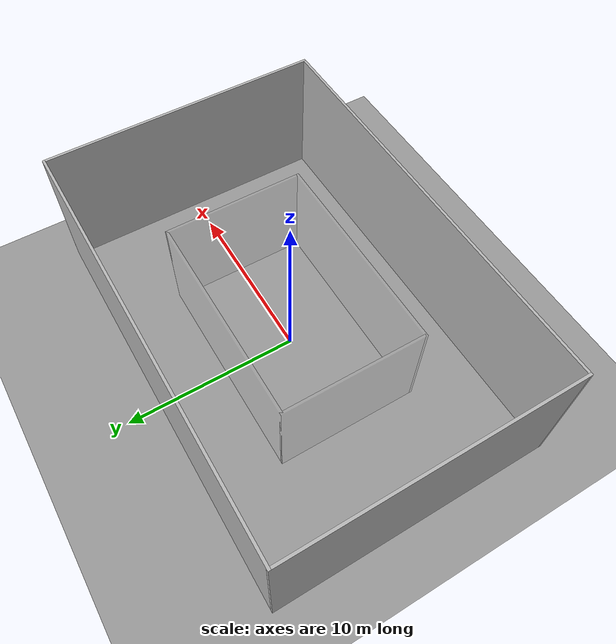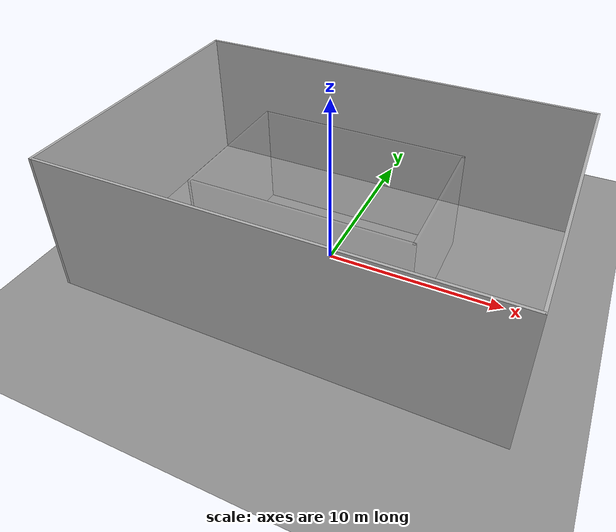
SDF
<?xml version="1.0" ?>
<sdf version="1.6">
  <world name="flying_arena_o134">
    <include>
      <uri>model://sun</uri>
    </include>
    <include>
      <uri>model://flying_arena_o134</uri>
      <name>flying_arena_o134</name>
      <pose>0 0 0 0 0 0</pose>
    </include>
    <gravity>0 0 -9.8</gravity>
    <magnetic_field>6e-06 2.3e-05 -4.2e-05</magnetic_field>
    <atmosphere type='adiabatic'/>
    <physics name='default_physics' default='0' type='ode'>
      <ode>
        <solver>
          <type>quick</type>
          <iters>10</iters>
          <sor>1.3</sor>
          <use_dynamic_moi_rescaling>0</use_dynamic_moi_rescaling>
        </solver>
        <constraints>
          <cfm>0</cfm>
          <erp>0.2</erp>
          <contact_max_correcting_vel>100</contact_max_correcting_vel>
          <contact_surface_layer>0.001</contact_surface_layer>
        </constraints>
      </ode>
      <max_step_size>0.004</max_step_size>
      <real_time_factor>1</real_time_factor>
      <real_time_update_rate>250</real_time_update_rate>
    </physics>
    <scene>
      <ambient>0.4 0.4 0.4 1</ambient>
      <background>0.7 0.7 0.7 1</background>
      <shadows>0</shadows>
      <grid>false</grid>
    </scene>
    <spherical_coordinates>
      <surface_model>EARTH_WGS84</surface_model>
      <latitude_deg>-27.477680132777415</latitude_deg>
      <longitude_deg>153.02848862212434</longitude_deg>
      <elevation>68</elevation>
      <heading_deg>0</heading_deg>
    </spherical_coordinates>
    <gui fullscreen='0'>
      <camera name='user_camera'>
        <pose frame=''>-6.22181 0.07427 5.33499 0 0.57 0</pose>
        <view_controller>orbit</view_controller>
        <projection_type>perspective</projection_type>
      </camera>
    </gui>
    <audio>
      <device>default</device>
    </audio>
  </world>
</sdf>

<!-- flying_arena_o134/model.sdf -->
<sdf version='1.6'>
  <model name='flying_arena_o134'>
    <pose frame=''>0 0 0 0 -0 0</pose>
    <static>1</static>
    <!-- Grey Ground Plane -->
    <link name="Ground">
      <collision name="collision">
        <geometry>
          <plane>
            <normal>0 0 1</normal>
            <size>30 30</size>
          </plane>
        </geometry>
        <surface>
          <friction>
            <ode>
              <mu>100</mu>
              <mu2>50</mu2>
            </ode>
          </friction>
        </surface>
      </collision>
      <visual name="visual">
        <cast_shadows>false</cast_shadows>
        <geometry>
          <plane>
            <normal>0 0 1</normal>
            <size>30 30</size>
          </plane>
        </geometry>
        <material>
          <script>
            <uri>model://flying_arena_o134/materials/scripts</uri>
            <name>Gazebo/CustomGrey</name>
          </script>
        </material>
      </visual>
    </link>
    <!-- Beginning of Inner Wall Section - Transparent Walls -->
    <link name='Inner_Wall_0'>
      <collision name='Inner_Wall_0_Collision'>
        <geometry>
          <box>
            <size>8.15 0.15 6</size>
          </box>
        </geometry>
        <pose frame=''>0 0 3 0 -0 0</pose>
      </collision>
      <visual name='Inner_Wall_0_Visual'>
        <pose frame=''>0 0 3 0 -0 0</pose>
        <cast_shadows>false</cast_shadows>
        <geometry>
          <box>
            <size>8.15 0.15 6</size>
          </box>
        </geometry>
        <cast_shadows>0</cast_shadows>
        <transparency>0.9</transparency>
      </visual>
      <pose frame=''>-6 0 0 0 -0 1.5708</pose>
    </link>
    <link name='Inner_Wall_1'>
      <collision name='Inner_Wall_1_Collision'>
        <geometry>
          <box>
            <size>12.15 0.15 6</size>
          </box>
        </geometry>
        <pose frame=''>0 0 3 0 -0 0</pose>
      </collision>
      <visual name='Inner_Wall_1_Visual'>
        <pose frame=''>0 0 3 0 -0 0</pose>
        <cast_shadows>false</cast_shadows>
        <geometry>
          <box>
            <size>12.15 0.15 6</size>
          </box>
        </geometry>
        <cast_shadows>0</cast_shadows>
        <transparency>0.9</transparency>
      </visual>
      <pose frame=''>0 4 0 0 -0 0</pose>
    </link>
    <link name='Inner_Wall_2'>
      <collision name='Inner_Wall_2_Collision'>
        <geometry>
          <box>
            <size>8.15 0.15 6</size>
          </box>
        </geometry>
        <pose frame=''>0 0 3 0 -0 0</pose>
      </collision>
      <visual name='Inner_Wall_2_Visual'>
        <cast_shadows>false</cast_shadows>
        <pose frame=''>0 0 3 0 -0 0</pose>
        <geometry>
          <box>
            <size>8.15 0.15 6</size>
          </box>
        </geometry>
        <cast_shadows>0</cast_shadows>
        <transparency>0.9</transparency>
      </visual>
      <pose frame=''>6 0 0 0 0 -1.5708</pose>
    </link>
    <link name='Inner_Wall_3'>
      <collision name='Inner_Wall_3_Collision'>
        <geometry>
          <box>
            <size>12.15 0.15 6</size>
          </box>
        </geometry>
        <pose frame=''>0 0 3 0 -0 0</pose>
      </collision>
      <visual name='Inner_Wall_3_Visual'>
        <cast_shadows>false</cast_shadows>
        <pose frame=''>0 0 3 0 -0 0</pose>
        <geometry>
          <box>
            <size>12.15 0.15 6</size>
          </box>
        </geometry>
        <cast_shadows>0</cast_shadows>
        <transparency>0.9</transparency>
      </visual>
      <pose frame=''>0 -4 0 0 -0 3.14159</pose>
    </link>
    <!-- End of Inner Wall Section, Beginning Outer Walls Section -->
    <link name='Outer_Wall_0'>
      <collision name='Outer_Wall_0_Collision'>
        <geometry>
          <box>
            <size>24.15 0.15 8</size>
          </box>
        </geometry>
        <pose frame=''>0 0 4 0 -0 0</pose>
      </collision>
      <visual name='Outer_Wall_0_Visual'>
        <pose frame=''>0 0 4 0 -0 0</pose>
        <geometry>
          <box>
            <size>24.15 0.15 8</size>
          </box>
        </geometry>
        <material>
          <!-- Changed Values here -->
          <script>
            <uri>model://flying_arena_o134/materials/scripts</uri>
            <uri>model://flying_arena_o134/materials/textures</uri>
            <name>MyWallPlane/ImageTwo</name>
          </script>
        </material>
        <cast_shadows>0</cast_shadows>
      </visual>
      <pose frame=''>0 8 0 0 -0 0</pose>
    </link>
    <link name='Outer_Wall_1'>
      <collision name='Outer_Wall_1_Collision'>
        <geometry>
          <box>
            <size>16.15 0.15 8</size>
          </box>
        </geometry>
        <pose frame=''>0 0 4 0 -0 0</pose>
      </collision>
      <visual name='Outer_Wall_1_Visual'>
        <pose frame=''>0 0 4 0 -0 0</pose>
        <geometry>
          <box>
            <size>16.15 0.15 8</size>
          </box>
        </geometry>
        <material>
          <!-- Changed Values here -->
          <script>
            <uri>model://flying_arena_o134/materials/scripts</uri>
            <uri>model://flying_arena_o134/materials/textures</uri>
            <name>MyWallPlane/ImageThree</name>
          </script>
        </material>
        <cast_shadows>0</cast_shadows>
      </visual>
      <pose frame=''>12 0 0 0 0 -1.5708</pose>
    </link>
    <link name='Outer_Wall_2'>
      <collision name='Outer_Wall_2_Collision'>
        <geometry>
          <box>
            <size>24.15 0.15 8</size>
          </box>
        </geometry>
        <pose frame=''>0 0 4 0 -0 0</pose>
      </collision>
      <visual name='Outer_Wall_2_Visual'>
        <pose frame=''>0 0 4 0 -0 0</pose>
        <geometry>
          <box>
            <size>24.15 0.15 8</size>
          </box>
        </geometry>
        <material>
          <!-- Changed Values here -->
          <script>
            <uri>model://flying_arena_o134/materials/scripts</uri>
            <uri>model://flying_arena_o134/materials/textures</uri>
            <name>MyWallPlane/ImageFour</name>
          </script>
        </material>
        <cast_shadows>0</cast_shadows>
      </visual>
      <pose frame=''>0 -8 0 0 -0 3.14159</pose>
    </link>
    <link name='Outer_Wall_3'>
      <collision name='Outer_Wall_3_Collision'>
        <geometry>
          <box>
            <size>16.15 0.15 8</size>
          </box>
        </geometry>
        <pose frame=''>0 0 4 0 -0 0</pose>
      </collision>
      <visual name='Outer_Wall_3_Visual'>
        <pose frame=''>0 0 4 0 -0 0</pose>
        <geometry>
          <box>
            <size>16.15 0.15 8</size>
          </box>
        </geometry>
        <material>
          <!-- Changed Values here -->
          <script>
            <uri>model://flying_arena_o134/materials/scripts</uri>
            <uri>model://flying_arena_o134/materials/textures</uri>
            <name>MyWallPlane/ImageOne</name>
          </script>
        </material>
        <cast_shadows>0</cast_shadows>
      </visual>
      <pose frame=''>-12 0 0 0 -0 1.5708</pose>
    </link>
  </model>
</sdf>
